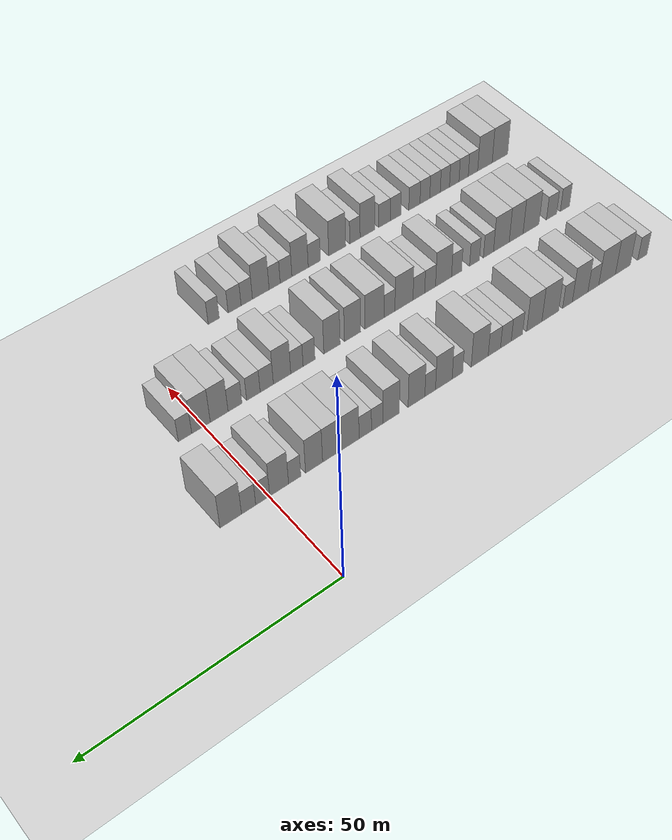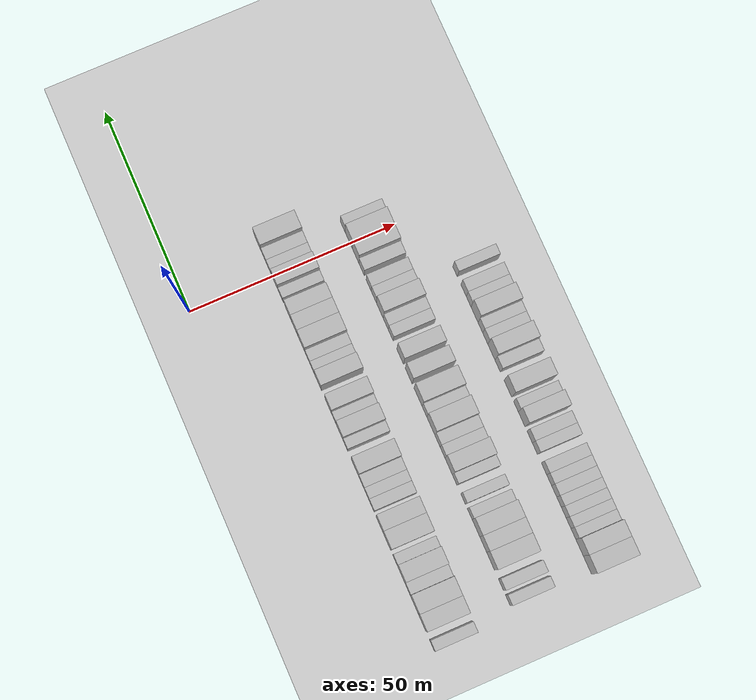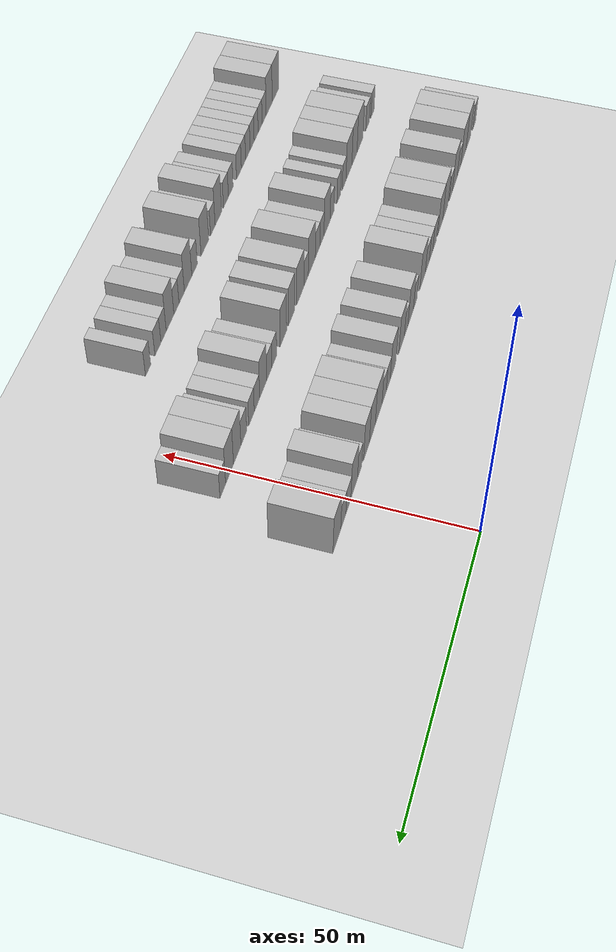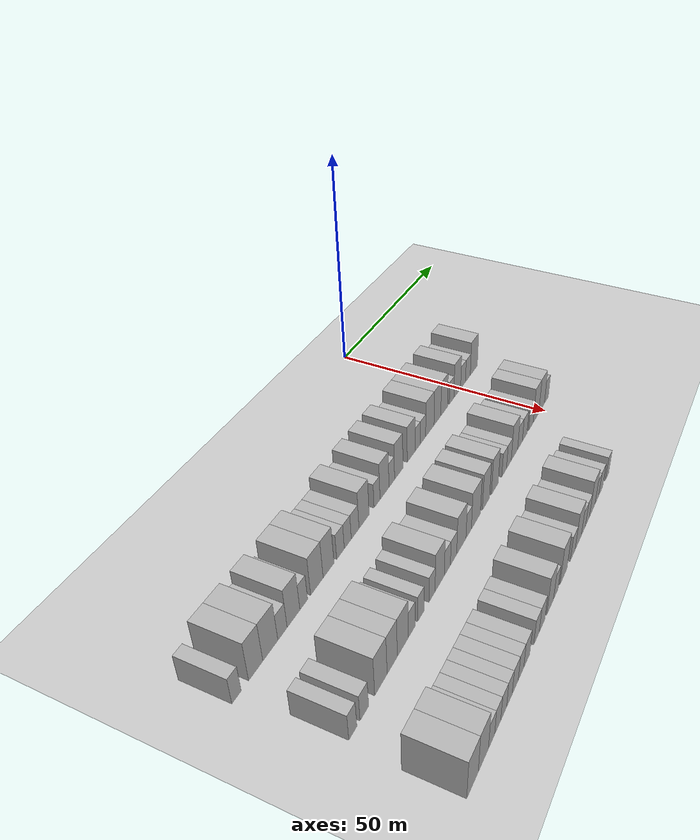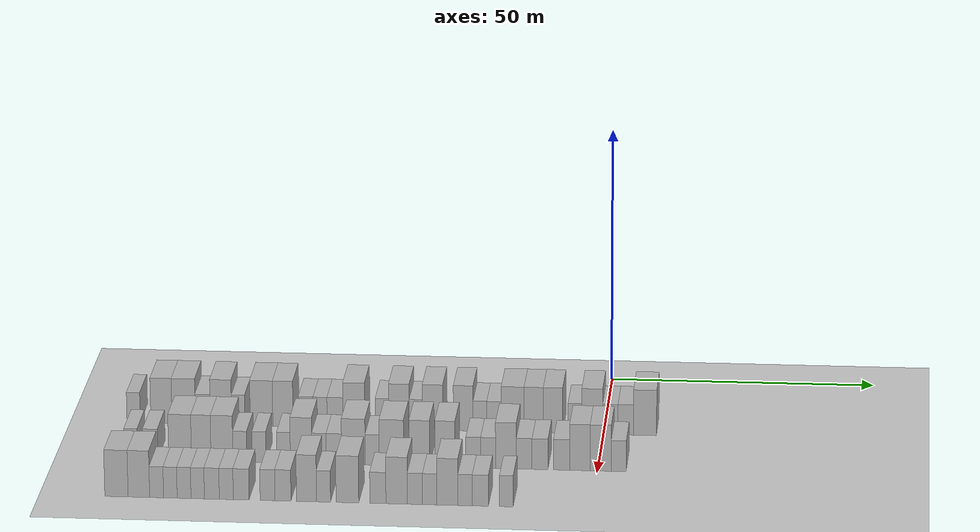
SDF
<sdf version="1.6">
 <world name="default">
  <include><name>ground_plane_1</name><uri>model://HANNAS_ground_plane</uri></include>
  <model name="building_59">
   <static>1</static>
   <pose>25.0000 -88.2660 0 0.000000 0.000000 0.000000</pose>
   <link name="link">
    <pose>0 0 3.00 0 0 0</pose>
    <collision name="collision"><geometry><box><size>10.0000 2.4998 6.0000</size></box></geometry></collision>
    <visual name="visual">
     <cast_shadows>0</cast_shadows>
     <geometry><box><size>10.0000 2.4998 6.0000</size></box></geometry>
     <material>
      <script>
       <uri>model://HANNAS_wall/materials/scripts</uri>
       <uri>model://HANNAS_wall/materials/textures</uri>
       <name>vrc/HANNAS_wall</name>
      </script>
     </material>
    </visual>
   </link>
  </model>
  <model name="building_60">
   <static>1</static>
   <pose>25.0000 -83.0185 0 0.000000 0.000000 0.000000</pose>
   <link name="link">
    <pose>0 0 4.50 0 0 0</pose>
    <collision name="collision"><geometry><box><size>10.0000 3.9951 9.0000</size></box></geometry></collision>
    <visual name="visual">
     <cast_shadows>0</cast_shadows>
     <geometry><box><size>10.0000 3.9951 9.0000</size></box></geometry>
     <material>
      <script>
       <uri>model://HANNAS_wall/materials/scripts</uri>
       <uri>model://HANNAS_wall/materials/textures</uri>
       <name>vrc/HANNAS_wall</name>
      </script>
     </material>
    </visual>
   </link>
  </model>
  <model name="building_61">
   <static>1</static>
   <pose>25.0000 -78.8180 0 0.000000 0.000000 0.000000</pose>
   <link name="link">
    <pose>0 0 4.50 0 0 0</pose>
    <collision name="collision"><geometry><box><size>10.0000 4.4060 9.0000</size></box></geometry></collision>
    <visual name="visual">
     <cast_shadows>0</cast_shadows>
     <geometry><box><size>10.0000 4.4060 9.0000</size></box></geometry>
     <material>
      <script>
       <uri>model://HANNAS_wall/materials/scripts</uri>
       <uri>model://HANNAS_wall/materials/textures</uri>
       <name>vrc/HANNAS_wall</name>
      </script>
     </material>
    </visual>
   </link>
  </model>
  <model name="building_62">
   <static>1</static>
   <pose>25.0000 -75.1995 0 0.000000 0.000000 0.000000</pose>
   <link name="link">
    <pose>0 0 3.00 0 0 0</pose>
    <collision name="collision"><geometry><box><size>10.0000 2.8310 6.0000</size></box></geometry></collision>
    <visual name="visual">
     <cast_shadows>0</cast_shadows>
     <geometry><box><size>10.0000 2.8310 6.0000</size></box></geometry>
     <material>
      <script>
       <uri>model://HANNAS_wall/materials/scripts</uri>
       <uri>model://HANNAS_wall/materials/textures</uri>
       <name>vrc/HANNAS_wall</name>
      </script>
     </material>
    </visual>
   </link>
  </model>
  <model name="building_63">
   <static>1</static>
   <pose>25.0000 -71.7658 0 0.000000 0.000000 0.000000</pose>
   <link name="link">
    <pose>0 0 4.50 0 0 0</pose>
    <collision name="collision"><geometry><box><size>10.0000 4.0365 9.0000</size></box></geometry></collision>
    <visual name="visual">
     <cast_shadows>0</cast_shadows>
     <geometry><box><size>10.0000 4.0365 9.0000</size></box></geometry>
     <material>
      <script>
       <uri>model://HANNAS_wall/materials/scripts</uri>
       <uri>model://HANNAS_wall/materials/textures</uri>
       <name>vrc/HANNAS_wall</name>
      </script>
     </material>
    </visual>
   </link>
  </model>
  <model name="building_64">
   <static>1</static>
   <pose>25.0000 -68.5009 0 0.000000 0.000000 0.000000</pose>
   <link name="link">
    <pose>0 0 3.00 0 0 0</pose>
    <collision name="collision"><geometry><box><size>10.0000 2.4933 6.0000</size></box></geometry></collision>
    <visual name="visual">
     <cast_shadows>0</cast_shadows>
     <geometry><box><size>10.0000 2.4933 6.0000</size></box></geometry>
     <material>
      <script>
       <uri>model://HANNAS_wall/materials/scripts</uri>
       <uri>model://HANNAS_wall/materials/textures</uri>
       <name>vrc/HANNAS_wall</name>
      </script>
     </material>
    </visual>
   </link>
  </model>
  <model name="building_65">
   <static>1</static>
   <pose>25.0000 -64.1254 0 0.000000 0.000000 0.000000</pose>
   <link name="link">
    <pose>0 0 4.50 0 0 0</pose>
    <collision name="collision"><geometry><box><size>10.0000 4.2577 9.0000</size></box></geometry></collision>
    <visual name="visual">
     <cast_shadows>0</cast_shadows>
     <geometry><box><size>10.0000 4.2577 9.0000</size></box></geometry>
     <material>
      <script>
       <uri>model://HANNAS_wall/materials/scripts</uri>
       <uri>model://HANNAS_wall/materials/textures</uri>
       <name>vrc/HANNAS_wall</name>
      </script>
     </material>
    </visual>
   </link>
  </model>
  <model name="building_66">
   <static>1</static>
   <pose>25.0000 -60.0883 0 0.000000 0.000000 0.000000</pose>
   <link name="link">
    <pose>0 0 4.50 0 0 0</pose>
    <collision name="collision"><geometry><box><size>10.0000 3.8163 9.0000</size></box></geometry></collision>
    <visual name="visual">
     <cast_shadows>0</cast_shadows>
     <geometry><box><size>10.0000 3.8163 9.0000</size></box></geometry>
     <material>
      <script>
       <uri>model://HANNAS_wall/materials/scripts</uri>
       <uri>model://HANNAS_wall/materials/textures</uri>
       <name>vrc/HANNAS_wall</name>
      </script>
     </material>
    </visual>
   </link>
  </model>
  <model name="building_67">
   <static>1</static>
   <pose>25.0000 -55.7863 0 0.000000 0.000000 0.000000</pose>
   <link name="link">
    <pose>0 0 3.00 0 0 0</pose>
    <collision name="collision"><geometry><box><size>10.0000 2.7878 6.0000</size></box></geometry></collision>
    <visual name="visual">
     <cast_shadows>0</cast_shadows>
     <geometry><box><size>10.0000 2.7878 6.0000</size></box></geometry>
     <material>
      <script>
       <uri>model://HANNAS_wall/materials/scripts</uri>
       <uri>model://HANNAS_wall/materials/textures</uri>
       <name>vrc/HANNAS_wall</name>
      </script>
     </material>
    </visual>
   </link>
  </model>
  <model name="building_68">
   <static>1</static>
   <pose>25.0000 -53.0809 0 0.000000 0.000000 0.000000</pose>
   <link name="link">
    <pose>0 0 3.00 0 0 0</pose>
    <collision name="collision"><geometry><box><size>10.0000 2.6230 6.0000</size></box></geometry></collision>
    <visual name="visual">
     <cast_shadows>0</cast_shadows>
     <geometry><box><size>10.0000 2.6230 6.0000</size></box></geometry>
     <material>
      <script>
       <uri>model://HANNAS_wall/materials/scripts</uri>
       <uri>model://HANNAS_wall/materials/textures</uri>
       <name>vrc/HANNAS_wall</name>
      </script>
     </material>
    </visual>
   </link>
  </model>
  <model name="building_69">
   <static>1</static>
   <pose>25.0000 -50.2747 0 0.000000 0.000000 0.000000</pose>
   <link name="link">
    <pose>0 0 3.00 0 0 0</pose>
    <collision name="collision"><geometry><box><size>10.0000 2.9894 6.0000</size></box></geometry></collision>
    <visual name="visual">
     <cast_shadows>0</cast_shadows>
     <geometry><box><size>10.0000 2.9894 6.0000</size></box></geometry>
     <material>
      <script>
       <uri>model://HANNAS_wall/materials/scripts</uri>
       <uri>model://HANNAS_wall/materials/textures</uri>
       <name>vrc/HANNAS_wall</name>
      </script>
     </material>
    </visual>
   </link>
  </model>
  <model name="building_70">
   <static>1</static>
   <pose>25.0000 -46.7468 0 0.000000 0.000000 0.000000</pose>
   <link name="link">
    <pose>0 0 4.50 0 0 0</pose>
    <collision name="collision"><geometry><box><size>10.0000 4.0664 9.0000</size></box></geometry></collision>
    <visual name="visual">
     <cast_shadows>0</cast_shadows>
     <geometry><box><size>10.0000 4.0664 9.0000</size></box></geometry>
     <material>
      <script>
       <uri>model://HANNAS_wall/materials/scripts</uri>
       <uri>model://HANNAS_wall/materials/textures</uri>
       <name>vrc/HANNAS_wall</name>
      </script>
     </material>
    </visual>
   </link>
  </model>
  <model name="building_71">
   <static>1</static>
   <pose>25.0000 -41.4574 0 0.000000 0.000000 0.000000</pose>
   <link name="link">
    <pose>0 0 3.00 0 0 0</pose>
    <collision name="collision"><geometry><box><size>10.0000 2.5124 6.0000</size></box></geometry></collision>
    <visual name="visual">
     <cast_shadows>0</cast_shadows>
     <geometry><box><size>10.0000 2.5124 6.0000</size></box></geometry>
     <material>
      <script>
       <uri>model://HANNAS_wall/materials/scripts</uri>
       <uri>model://HANNAS_wall/materials/textures</uri>
       <name>vrc/HANNAS_wall</name>
      </script>
     </material>
    </visual>
   </link>
  </model>
  <model name="building_72">
   <static>1</static>
   <pose>25.0000 -38.2625 0 0.000000 0.000000 0.000000</pose>
   <link name="link">
    <pose>0 0 4.50 0 0 0</pose>
    <collision name="collision"><geometry><box><size>10.0000 3.8774 9.0000</size></box></geometry></collision>
    <visual name="visual">
     <cast_shadows>0</cast_shadows>
     <geometry><box><size>10.0000 3.8774 9.0000</size></box></geometry>
     <material>
      <script>
       <uri>model://HANNAS_wall/materials/scripts</uri>
       <uri>model://HANNAS_wall/materials/textures</uri>
       <name>vrc/HANNAS_wall</name>
      </script>
     </material>
    </visual>
   </link>
  </model>
  <model name="building_73">
   <static>1</static>
   <pose>25.0000 -35.0971 0 0.000000 0.000000 0.000000</pose>
   <link name="link">
    <pose>0 0 3.00 0 0 0</pose>
    <collision name="collision"><geometry><box><size>10.0000 2.4535 6.0000</size></box></geometry></collision>
    <visual name="visual">
     <cast_shadows>0</cast_shadows>
     <geometry><box><size>10.0000 2.4535 6.0000</size></box></geometry>
     <material>
      <script>
       <uri>model://HANNAS_wall/materials/scripts</uri>
       <uri>model://HANNAS_wall/materials/textures</uri>
       <name>vrc/HANNAS_wall</name>
      </script>
     </material>
    </visual>
   </link>
  </model>
  <model name="building_74">
   <static>1</static>
   <pose>25.0000 -31.9582 0 0.000000 0.000000 0.000000</pose>
   <link name="link">
    <pose>0 0 4.50 0 0 0</pose>
    <collision name="collision"><geometry><box><size>10.0000 3.8245 9.0000</size></box></geometry></collision>
    <visual name="visual">
     <cast_shadows>0</cast_shadows>
     <geometry><box><size>10.0000 3.8245 9.0000</size></box></geometry>
     <material>
      <script>
       <uri>model://HANNAS_wall/materials/scripts</uri>
       <uri>model://HANNAS_wall/materials/textures</uri>
       <name>vrc/HANNAS_wall</name>
      </script>
     </material>
    </visual>
   </link>
  </model>
  <model name="building_75">
   <static>1</static>
   <pose>25.0000 -26.1996 0 0.000000 0.000000 0.000000</pose>
   <link name="link">
    <pose>0 0 4.50 0 0 0</pose>
    <collision name="collision"><geometry><box><size>10.0000 3.6927 9.0000</size></box></geometry></collision>
    <visual name="visual">
     <cast_shadows>0</cast_shadows>
     <geometry><box><size>10.0000 3.6927 9.0000</size></box></geometry>
     <material>
      <script>
       <uri>model://HANNAS_wall/materials/scripts</uri>
       <uri>model://HANNAS_wall/materials/textures</uri>
       <name>vrc/HANNAS_wall</name>
      </script>
     </material>
    </visual>
   </link>
  </model>
  <model name="building_76">
   <static>1</static>
   <pose>25.0000 -23.0851 0 0.000000 0.000000 0.000000</pose>
   <link name="link">
    <pose>0 0 3.00 0 0 0</pose>
    <collision name="collision"><geometry><box><size>10.0000 2.5362 6.0000</size></box></geometry></collision>
    <visual name="visual">
     <cast_shadows>0</cast_shadows>
     <geometry><box><size>10.0000 2.5362 6.0000</size></box></geometry>
     <material>
      <script>
       <uri>model://HANNAS_wall/materials/scripts</uri>
       <uri>model://HANNAS_wall/materials/textures</uri>
       <name>vrc/HANNAS_wall</name>
      </script>
     </material>
    </visual>
   </link>
  </model>
  <model name="building_77">
   <static>1</static>
   <pose>25.0000 -20.4574 0 0.000000 0.000000 0.000000</pose>
   <link name="link">
    <pose>0 0 3.00 0 0 0</pose>
    <collision name="collision"><geometry><box><size>10.0000 2.7192 6.0000</size></box></geometry></collision>
    <visual name="visual">
     <cast_shadows>0</cast_shadows>
     <geometry><box><size>10.0000 2.7192 6.0000</size></box></geometry>
     <material>
      <script>
       <uri>model://HANNAS_wall/materials/scripts</uri>
       <uri>model://HANNAS_wall/materials/textures</uri>
       <name>vrc/HANNAS_wall</name>
      </script>
     </material>
    </visual>
   </link>
  </model>
  <model name="building_78">
   <static>1</static>
   <pose>25.0000 -16.9598 0 0.000000 0.000000 0.000000</pose>
   <link name="link">
    <pose>0 0 4.50 0 0 0</pose>
    <collision name="collision"><geometry><box><size>10.0000 4.2761 9.0000</size></box></geometry></collision>
    <visual name="visual">
     <cast_shadows>0</cast_shadows>
     <geometry><box><size>10.0000 4.2761 9.0000</size></box></geometry>
     <material>
      <script>
       <uri>model://HANNAS_wall/materials/scripts</uri>
       <uri>model://HANNAS_wall/materials/textures</uri>
       <name>vrc/HANNAS_wall</name>
      </script>
     </material>
    </visual>
   </link>
  </model>
  <model name="building_79">
   <static>1</static>
   <pose>25.0000 -13.0199 0 0.000000 0.000000 0.000000</pose>
   <link name="link">
    <pose>0 0 4.50 0 0 0</pose>
    <collision name="collision"><geometry><box><size>10.0000 3.6037 9.0000</size></box></geometry></collision>
    <visual name="visual">
     <cast_shadows>0</cast_shadows>
     <geometry><box><size>10.0000 3.6037 9.0000</size></box></geometry>
     <material>
      <script>
       <uri>model://HANNAS_wall/materials/scripts</uri>
       <uri>model://HANNAS_wall/materials/textures</uri>
       <name>vrc/HANNAS_wall</name>
      </script>
     </material>
    </visual>
   </link>
  </model>
  <model name="building_80">
   <static>1</static>
   <pose>25.0000 -9.4075 0 0.000000 0.000000 0.000000</pose>
   <link name="link">
    <pose>0 0 4.50 0 0 0</pose>
    <collision name="collision"><geometry><box><size>10.0000 3.6210 9.0000</size></box></geometry></collision>
    <visual name="visual">
     <cast_shadows>0</cast_shadows>
     <geometry><box><size>10.0000 3.6210 9.0000</size></box></geometry>
     <material>
      <script>
       <uri>model://HANNAS_wall/materials/scripts</uri>
       <uri>model://HANNAS_wall/materials/textures</uri>
       <name>vrc/HANNAS_wall</name>
      </script>
     </material>
    </visual>
   </link>
  </model>
  <model name="building_81">
   <static>1</static>
   <pose>25.0000 -5.3131 0 0.000000 0.000000 0.000000</pose>
   <link name="link">
    <pose>0 0 3.00 0 0 0</pose>
    <collision name="collision"><geometry><box><size>10.0000 2.5679 6.0000</size></box></geometry></collision>
    <visual name="visual">
     <cast_shadows>0</cast_shadows>
     <geometry><box><size>10.0000 2.5679 6.0000</size></box></geometry>
     <material>
      <script>
       <uri>model://HANNAS_wall/materials/scripts</uri>
       <uri>model://HANNAS_wall/materials/textures</uri>
       <name>vrc/HANNAS_wall</name>
      </script>
     </material>
    </visual>
   </link>
  </model>
  <model name="building_82">
   <static>1</static>
   <pose>25.0000 -2.0773 0 0.000000 0.000000 0.000000</pose>
   <link name="link">
    <pose>0 0 4.50 0 0 0</pose>
    <collision name="collision"><geometry><box><size>10.0000 3.9038 9.0000</size></box></geometry></collision>
    <visual name="visual">
     <cast_shadows>0</cast_shadows>
     <geometry><box><size>10.0000 3.9038 9.0000</size></box></geometry>
     <material>
      <script>
       <uri>model://HANNAS_wall/materials/scripts</uri>
       <uri>model://HANNAS_wall/materials/textures</uri>
       <name>vrc/HANNAS_wall</name>
      </script>
     </material>
    </visual>
   </link>
  </model>
  <model name="building_83">
   <static>1</static>
   <pose>25.0000 1.3079 0 0.000000 0.000000 0.000000</pose>
   <link name="link">
    <pose>0 0 3.00 0 0 0</pose>
    <collision name="collision"><geometry><box><size>10.0000 2.8666 6.0000</size></box></geometry></collision>
    <visual name="visual">
     <cast_shadows>0</cast_shadows>
     <geometry><box><size>10.0000 2.8666 6.0000</size></box></geometry>
     <material>
      <script>
       <uri>model://HANNAS_wall/materials/scripts</uri>
       <uri>model://HANNAS_wall/materials/textures</uri>
       <name>vrc/HANNAS_wall</name>
      </script>
     </material>
    </visual>
   </link>
  </model>
  <model name="building_84">
   <static>1</static>
   <pose>25.0000 4.1824 0 0.000000 0.000000 0.000000</pose>
   <link name="link">
    <pose>0 0 3.00 0 0 0</pose>
    <collision name="collision"><geometry><box><size>10.0000 2.8824 6.0000</size></box></geometry></collision>
    <visual name="visual">
     <cast_shadows>0</cast_shadows>
     <geometry><box><size>10.0000 2.8824 6.0000</size></box></geometry>
     <material>
      <script>
       <uri>model://HANNAS_wall/materials/scripts</uri>
       <uri>model://HANNAS_wall/materials/textures</uri>
       <name>vrc/HANNAS_wall</name>
      </script>
     </material>
    </visual>
   </link>
  </model>
  <model name="building_85">
   <static>1</static>
   <pose>25.0000 7.7852 0 0.000000 0.000000 0.000000</pose>
   <link name="link">
    <pose>0 0 4.50 0 0 0</pose>
    <collision name="collision"><geometry><box><size>10.0000 4.3231 9.0000</size></box></geometry></collision>
    <visual name="visual">
     <cast_shadows>0</cast_shadows>
     <geometry><box><size>10.0000 4.3231 9.0000</size></box></geometry>
     <material>
      <script>
       <uri>model://HANNAS_wall/materials/scripts</uri>
       <uri>model://HANNAS_wall/materials/textures</uri>
       <name>vrc/HANNAS_wall</name>
      </script>
     </material>
    </visual>
   </link>
  </model>
  <model name="building_245">
   <static>1</static>
   <pose>44.0000 -86.0843 0 0.000000 0.000000 0.000000</pose>
   <link name="link">
    <pose>0 0 3.00 0 0 0</pose>
    <collision name="collision"><geometry><box><size>10.0000 2.4808 6.0000</size></box></geometry></collision>
    <visual name="visual">
     <cast_shadows>0</cast_shadows>
     <geometry><box><size>10.0000 2.4808 6.0000</size></box></geometry>
     <material>
      <script>
       <uri>model://HANNAS_wall/materials/scripts</uri>
       <uri>model://HANNAS_wall/materials/textures</uri>
       <name>vrc/HANNAS_wall</name>
      </script>
     </material>
    </visual>
   </link>
  </model>
  <model name="building_246">
   <static>1</static>
   <pose>44.0000 -82.4727 0 0.000000 0.000000 0.000000</pose>
   <link name="link">
    <pose>0 0 3.00 0 0 0</pose>
    <collision name="collision"><geometry><box><size>10.0000 2.7424 6.0000</size></box></geometry></collision>
    <visual name="visual">
     <cast_shadows>0</cast_shadows>
     <geometry><box><size>10.0000 2.7424 6.0000</size></box></geometry>
     <material>
      <script>
       <uri>model://HANNAS_wall/materials/scripts</uri>
       <uri>model://HANNAS_wall/materials/textures</uri>
       <name>vrc/HANNAS_wall</name>
      </script>
     </material>
    </visual>
   </link>
  </model>
  <model name="building_247">
   <static>1</static>
   <pose>44.0000 -76.9867 0 0.000000 0.000000 0.000000</pose>
   <link name="link">
    <pose>0 0 4.50 0 0 0</pose>
    <collision name="collision"><geometry><box><size>10.0000 4.2298 9.0000</size></box></geometry></collision>
    <visual name="visual">
     <cast_shadows>0</cast_shadows>
     <geometry><box><size>10.0000 4.2298 9.0000</size></box></geometry>
     <material>
      <script>
       <uri>model://HANNAS_wall/materials/scripts</uri>
       <uri>model://HANNAS_wall/materials/textures</uri>
       <name>vrc/HANNAS_wall</name>
      </script>
     </material>
    </visual>
   </link>
  </model>
  <model name="building_248">
   <static>1</static>
   <pose>44.0000 -73.0614 0 0.000000 0.000000 0.000000</pose>
   <link name="link">
    <pose>0 0 4.50 0 0 0</pose>
    <collision name="collision"><geometry><box><size>10.0000 3.6208 9.0000</size></box></geometry></collision>
    <visual name="visual">
     <cast_shadows>0</cast_shadows>
     <geometry><box><size>10.0000 3.6208 9.0000</size></box></geometry>
     <material>
      <script>
       <uri>model://HANNAS_wall/materials/scripts</uri>
       <uri>model://HANNAS_wall/materials/textures</uri>
       <name>vrc/HANNAS_wall</name>
      </script>
     </material>
    </visual>
   </link>
  </model>
  <model name="building_249">
   <static>1</static>
   <pose>44.0000 -69.2176 0 0.000000 0.000000 0.000000</pose>
   <link name="link">
    <pose>0 0 4.50 0 0 0</pose>
    <collision name="collision"><geometry><box><size>10.0000 4.0668 9.0000</size></box></geometry></collision>
    <visual name="visual">
     <cast_shadows>0</cast_shadows>
     <geometry><box><size>10.0000 4.0668 9.0000</size></box></geometry>
     <material>
      <script>
       <uri>model://HANNAS_wall/materials/scripts</uri>
       <uri>model://HANNAS_wall/materials/textures</uri>
       <name>vrc/HANNAS_wall</name>
      </script>
     </material>
    </visual>
   </link>
  </model>
  <model name="building_250">
   <static>1</static>
   <pose>44.0000 -65.8852 0 0.000000 0.000000 0.000000</pose>
   <link name="link">
    <pose>0 0 3.00 0 0 0</pose>
    <collision name="collision"><geometry><box><size>10.0000 2.5979 6.0000</size></box></geometry></collision>
    <visual name="visual">
     <cast_shadows>0</cast_shadows>
     <geometry><box><size>10.0000 2.5979 6.0000</size></box></geometry>
     <material>
      <script>
       <uri>model://HANNAS_wall/materials/scripts</uri>
       <uri>model://HANNAS_wall/materials/textures</uri>
       <name>vrc/HANNAS_wall</name>
      </script>
     </material>
    </visual>
   </link>
  </model>
  <model name="building_251">
   <static>1</static>
   <pose>44.0000 -62.3302 0 0.000000 0.000000 0.000000</pose>
   <link name="link">
    <pose>0 0 3.00 0 0 0</pose>
    <collision name="collision"><geometry><box><size>10.0000 2.5119 6.0000</size></box></geometry></collision>
    <visual name="visual">
     <cast_shadows>0</cast_shadows>
     <geometry><box><size>10.0000 2.5119 6.0000</size></box></geometry>
     <material>
      <script>
       <uri>model://HANNAS_wall/materials/scripts</uri>
       <uri>model://HANNAS_wall/materials/textures</uri>
       <name>vrc/HANNAS_wall</name>
      </script>
     </material>
    </visual>
   </link>
  </model>
  <model name="building_252">
   <static>1</static>
   <pose>44.0000 -57.8119 0 0.000000 0.000000 0.000000</pose>
   <link name="link">
    <pose>0 0 3.00 0 0 0</pose>
    <collision name="collision"><geometry><box><size>10.0000 2.5248 6.0000</size></box></geometry></collision>
    <visual name="visual">
     <cast_shadows>0</cast_shadows>
     <geometry><box><size>10.0000 2.5248 6.0000</size></box></geometry>
     <material>
      <script>
       <uri>model://HANNAS_wall/materials/scripts</uri>
       <uri>model://HANNAS_wall/materials/textures</uri>
       <name>vrc/HANNAS_wall</name>
      </script>
     </material>
    </visual>
   </link>
  </model>
  <model name="building_253">
   <static>1</static>
   <pose>44.0000 -54.5671 0 0.000000 0.000000 0.000000</pose>
   <link name="link">
    <pose>0 0 4.50 0 0 0</pose>
    <collision name="collision"><geometry><box><size>10.0000 3.9647 9.0000</size></box></geometry></collision>
    <visual name="visual">
     <cast_shadows>0</cast_shadows>
     <geometry><box><size>10.0000 3.9647 9.0000</size></box></geometry>
     <material>
      <script>
       <uri>model://HANNAS_wall/materials/scripts</uri>
       <uri>model://HANNAS_wall/materials/textures</uri>
       <name>vrc/HANNAS_wall</name>
      </script>
     </material>
    </visual>
   </link>
  </model>
  <model name="building_254">
   <static>1</static>
   <pose>44.0000 -51.2525 0 0.000000 0.000000 0.000000</pose>
   <link name="link">
    <pose>0 0 3.00 0 0 0</pose>
    <collision name="collision"><geometry><box><size>10.0000 2.6645 6.0000</size></box></geometry></collision>
    <visual name="visual">
     <cast_shadows>0</cast_shadows>
     <geometry><box><size>10.0000 2.6645 6.0000</size></box></geometry>
     <material>
      <script>
       <uri>model://HANNAS_wall/materials/scripts</uri>
       <uri>model://HANNAS_wall/materials/textures</uri>
       <name>vrc/HANNAS_wall</name>
      </script>
     </material>
    </visual>
   </link>
  </model>
  <model name="building_255">
   <static>1</static>
   <pose>44.0000 -48.4987 0 0.000000 0.000000 0.000000</pose>
   <link name="link">
    <pose>0 0 3.00 0 0 0</pose>
    <collision name="collision"><geometry><box><size>10.0000 2.8431 6.0000</size></box></geometry></collision>
    <visual name="visual">
     <cast_shadows>0</cast_shadows>
     <geometry><box><size>10.0000 2.8431 6.0000</size></box></geometry>
     <material>
      <script>
       <uri>model://HANNAS_wall/materials/scripts</uri>
       <uri>model://HANNAS_wall/materials/textures</uri>
       <name>vrc/HANNAS_wall</name>
      </script>
     </material>
    </visual>
   </link>
  </model>
  <model name="building_256">
   <static>1</static>
   <pose>44.0000 -44.9045 0 0.000000 0.000000 0.000000</pose>
   <link name="link">
    <pose>0 0 4.50 0 0 0</pose>
    <collision name="collision"><geometry><box><size>10.0000 4.3453 9.0000</size></box></geometry></collision>
    <visual name="visual">
     <cast_shadows>0</cast_shadows>
     <geometry><box><size>10.0000 4.3453 9.0000</size></box></geometry>
     <material>
      <script>
       <uri>model://HANNAS_wall/materials/scripts</uri>
       <uri>model://HANNAS_wall/materials/textures</uri>
       <name>vrc/HANNAS_wall</name>
      </script>
     </material>
    </visual>
   </link>
  </model>
  <model name="building_257">
   <static>1</static>
   <pose>44.0000 -41.4314 0 0.000000 0.000000 0.000000</pose>
   <link name="link">
    <pose>0 0 3.00 0 0 0</pose>
    <collision name="collision"><geometry><box><size>10.0000 2.6010 6.0000</size></box></geometry></collision>
    <visual name="visual">
     <cast_shadows>0</cast_shadows>
     <geometry><box><size>10.0000 2.6010 6.0000</size></box></geometry>
     <material>
      <script>
       <uri>model://HANNAS_wall/materials/scripts</uri>
       <uri>model://HANNAS_wall/materials/textures</uri>
       <name>vrc/HANNAS_wall</name>
      </script>
     </material>
    </visual>
   </link>
  </model>
  <model name="building_258">
   <static>1</static>
   <pose>44.0000 -37.8841 0 0.000000 0.000000 0.000000</pose>
   <link name="link">
    <pose>0 0 4.50 0 0 0</pose>
    <collision name="collision"><geometry><box><size>10.0000 4.4934 9.0000</size></box></geometry></collision>
    <visual name="visual">
     <cast_shadows>0</cast_shadows>
     <geometry><box><size>10.0000 4.4934 9.0000</size></box></geometry>
     <material>
      <script>
       <uri>model://HANNAS_wall/materials/scripts</uri>
       <uri>model://HANNAS_wall/materials/textures</uri>
       <name>vrc/HANNAS_wall</name>
      </script>
     </material>
    </visual>
   </link>
  </model>
  <model name="building_259">
   <static>1</static>
   <pose>44.0000 -32.7535 0 0.000000 0.000000 0.000000</pose>
   <link name="link">
    <pose>0 0 4.50 0 0 0</pose>
    <collision name="collision"><geometry><box><size>10.0000 3.7679 9.0000</size></box></geometry></collision>
    <visual name="visual">
     <cast_shadows>0</cast_shadows>
     <geometry><box><size>10.0000 3.7679 9.0000</size></box></geometry>
     <material>
      <script>
       <uri>model://HANNAS_wall/materials/scripts</uri>
       <uri>model://HANNAS_wall/materials/textures</uri>
       <name>vrc/HANNAS_wall</name>
      </script>
     </material>
    </visual>
   </link>
  </model>
  <model name="building_260">
   <static>1</static>
   <pose>44.0000 -28.0160 0 0.000000 0.000000 0.000000</pose>
   <link name="link">
    <pose>0 0 4.50 0 0 0</pose>
    <collision name="collision"><geometry><box><size>10.0000 3.7071 9.0000</size></box></geometry></collision>
    <visual name="visual">
     <cast_shadows>0</cast_shadows>
     <geometry><box><size>10.0000 3.7071 9.0000</size></box></geometry>
     <material>
      <script>
       <uri>model://HANNAS_wall/materials/scripts</uri>
       <uri>model://HANNAS_wall/materials/textures</uri>
       <name>vrc/HANNAS_wall</name>
      </script>
     </material>
    </visual>
   </link>
  </model>
  <model name="building_261">
   <static>1</static>
   <pose>44.0000 -22.8151 0 0.000000 0.000000 0.000000</pose>
   <link name="link">
    <pose>0 0 3.00 0 0 0</pose>
    <collision name="collision"><geometry><box><size>10.0000 2.6948 6.0000</size></box></geometry></collision>
    <visual name="visual">
     <cast_shadows>0</cast_shadows>
     <geometry><box><size>10.0000 2.6948 6.0000</size></box></geometry>
     <material>
      <script>
       <uri>model://HANNAS_wall/materials/scripts</uri>
       <uri>model://HANNAS_wall/materials/textures</uri>
       <name>vrc/HANNAS_wall</name>
      </script>
     </material>
    </visual>
   </link>
  </model>
  <model name="building_262">
   <static>1</static>
   <pose>44.0000 -20.0927 0 0.000000 0.000000 0.000000</pose>
   <link name="link">
    <pose>0 0 3.00 0 0 0</pose>
    <collision name="collision"><geometry><box><size>10.0000 2.7499 6.0000</size></box></geometry></collision>
    <visual name="visual">
     <cast_shadows>0</cast_shadows>
     <geometry><box><size>10.0000 2.7499 6.0000</size></box></geometry>
     <material>
      <script>
       <uri>model://HANNAS_wall/materials/scripts</uri>
       <uri>model://HANNAS_wall/materials/textures</uri>
       <name>vrc/HANNAS_wall</name>
      </script>
     </material>
    </visual>
   </link>
  </model>
  <model name="building_263">
   <static>1</static>
   <pose>44.0000 -16.7990 0 0.000000 0.000000 0.000000</pose>
   <link name="link">
    <pose>0 0 4.50 0 0 0</pose>
    <collision name="collision"><geometry><box><size>10.0000 3.8375 9.0000</size></box></geometry></collision>
    <visual name="visual">
     <cast_shadows>0</cast_shadows>
     <geometry><box><size>10.0000 3.8375 9.0000</size></box></geometry>
     <material>
      <script>
       <uri>model://HANNAS_wall/materials/scripts</uri>
       <uri>model://HANNAS_wall/materials/textures</uri>
       <name>vrc/HANNAS_wall</name>
      </script>
     </material>
    </visual>
   </link>
  </model>
  <model name="building_264">
   <static>1</static>
   <pose>44.0000 -13.4365 0 0.000000 0.000000 0.000000</pose>
   <link name="link">
    <pose>0 0 3.00 0 0 0</pose>
    <collision name="collision"><geometry><box><size>10.0000 2.8874 6.0000</size></box></geometry></collision>
    <visual name="visual">
     <cast_shadows>0</cast_shadows>
     <geometry><box><size>10.0000 2.8874 6.0000</size></box></geometry>
     <material>
      <script>
       <uri>model://HANNAS_wall/materials/scripts</uri>
       <uri>model://HANNAS_wall/materials/textures</uri>
       <name>vrc/HANNAS_wall</name>
      </script>
     </material>
    </visual>
   </link>
  </model>
  <model name="building_265">
   <static>1</static>
   <pose>44.0000 -10.5297 0 0.000000 0.000000 0.000000</pose>
   <link name="link">
    <pose>0 0 3.00 0 0 0</pose>
    <collision name="collision"><geometry><box><size>10.0000 2.9261 6.0000</size></box></geometry></collision>
    <visual name="visual">
     <cast_shadows>0</cast_shadows>
     <geometry><box><size>10.0000 2.9261 6.0000</size></box></geometry>
     <material>
      <script>
       <uri>model://HANNAS_wall/materials/scripts</uri>
       <uri>model://HANNAS_wall/materials/textures</uri>
       <name>vrc/HANNAS_wall</name>
      </script>
     </material>
    </visual>
   </link>
  </model>
  <model name="building_266">
   <static>1</static>
   <pose>44.0000 -6.5814 0 0.000000 0.000000 0.000000</pose>
   <link name="link">
    <pose>0 0 3.00 0 0 0</pose>
    <collision name="collision"><geometry><box><size>10.0000 2.9705 6.0000</size></box></geometry></collision>
    <visual name="visual">
     <cast_shadows>0</cast_shadows>
     <geometry><box><size>10.0000 2.9705 6.0000</size></box></geometry>
     <material>
      <script>
       <uri>model://HANNAS_wall/materials/scripts</uri>
       <uri>model://HANNAS_wall/materials/textures</uri>
       <name>vrc/HANNAS_wall</name>
      </script>
     </material>
    </visual>
   </link>
  </model>
  <model name="building_267">
   <static>1</static>
   <pose>44.0000 -3.2239 0 0.000000 0.000000 0.000000</pose>
   <link name="link">
    <pose>0 0 4.50 0 0 0</pose>
    <collision name="collision"><geometry><box><size>10.0000 3.7447 9.0000</size></box></geometry></collision>
    <visual name="visual">
     <cast_shadows>0</cast_shadows>
     <geometry><box><size>10.0000 3.7447 9.0000</size></box></geometry>
     <material>
      <script>
       <uri>model://HANNAS_wall/materials/scripts</uri>
       <uri>model://HANNAS_wall/materials/textures</uri>
       <name>vrc/HANNAS_wall</name>
      </script>
     </material>
    </visual>
   </link>
  </model>
  <model name="building_268">
   <static>1</static>
   <pose>44.0000 0.5912 0 0.000000 0.000000 0.000000</pose>
   <link name="link">
    <pose>0 0 4.50 0 0 0</pose>
    <collision name="collision"><geometry><box><size>10.0000 3.8855 9.0000</size></box></geometry></collision>
    <visual name="visual">
     <cast_shadows>0</cast_shadows>
     <geometry><box><size>10.0000 3.8855 9.0000</size></box></geometry>
     <material>
      <script>
       <uri>model://HANNAS_wall/materials/scripts</uri>
       <uri>model://HANNAS_wall/materials/textures</uri>
       <name>vrc/HANNAS_wall</name>
      </script>
     </material>
    </visual>
   </link>
  </model>
  <model name="building_269">
   <static>1</static>
   <pose>44.0000 3.9182 0 0.000000 0.000000 0.000000</pose>
   <link name="link">
    <pose>0 0 3.00 0 0 0</pose>
    <collision name="collision"><geometry><box><size>10.0000 2.7685 6.0000</size></box></geometry></collision>
    <visual name="visual">
     <cast_shadows>0</cast_shadows>
     <geometry><box><size>10.0000 2.7685 6.0000</size></box></geometry>
     <material>
      <script>
       <uri>model://HANNAS_wall/materials/scripts</uri>
       <uri>model://HANNAS_wall/materials/textures</uri>
       <name>vrc/HANNAS_wall</name>
      </script>
     </material>
    </visual>
   </link>
  </model>
  <model name="building_405">
   <static>1</static>
   <pose>63.0000 -86.0707 0 0.000000 0.000000 0.000000</pose>
   <link name="link">
    <pose>0 0 4.50 0 0 0</pose>
    <collision name="collision"><geometry><box><size>10.0000 4.2426 9.0000</size></box></geometry></collision>
    <visual name="visual">
     <cast_shadows>0</cast_shadows>
     <geometry><box><size>10.0000 4.2426 9.0000</size></box></geometry>
     <material>
      <script>
       <uri>model://HANNAS_wall/materials/scripts</uri>
       <uri>model://HANNAS_wall/materials/textures</uri>
       <name>vrc/HANNAS_wall</name>
      </script>
     </material>
    </visual>
   </link>
  </model>
  <model name="building_406">
   <static>1</static>
   <pose>63.0000 -81.9878 0 0.000000 0.000000 0.000000</pose>
   <link name="link">
    <pose>0 0 4.50 0 0 0</pose>
    <collision name="collision"><geometry><box><size>10.0000 3.9231 9.0000</size></box></geometry></collision>
    <visual name="visual">
     <cast_shadows>0</cast_shadows>
     <geometry><box><size>10.0000 3.9231 9.0000</size></box></geometry>
     <material>
      <script>
       <uri>model://HANNAS_wall/materials/scripts</uri>
       <uri>model://HANNAS_wall/materials/textures</uri>
       <name>vrc/HANNAS_wall</name>
      </script>
     </material>
    </visual>
   </link>
  </model>
  <model name="building_407">
   <static>1</static>
   <pose>63.0000 -78.7579 0 0.000000 0.000000 0.000000</pose>
   <link name="link">
    <pose>0 0 3.00 0 0 0</pose>
    <collision name="collision"><geometry><box><size>10.0000 2.5367 6.0000</size></box></geometry></collision>
    <visual name="visual">
     <cast_shadows>0</cast_shadows>
     <geometry><box><size>10.0000 2.5367 6.0000</size></box></geometry>
     <material>
      <script>
       <uri>model://HANNAS_wall/materials/scripts</uri>
       <uri>model://HANNAS_wall/materials/textures</uri>
       <name>vrc/HANNAS_wall</name>
      </script>
     </material>
    </visual>
   </link>
  </model>
  <model name="building_408">
   <static>1</static>
   <pose>63.0000 -76.2513 0 0.000000 0.000000 0.000000</pose>
   <link name="link">
    <pose>0 0 3.00 0 0 0</pose>
    <collision name="collision"><geometry><box><size>10.0000 2.4766 6.0000</size></box></geometry></collision>
    <visual name="visual">
     <cast_shadows>0</cast_shadows>
     <geometry><box><size>10.0000 2.4766 6.0000</size></box></geometry>
     <material>
      <script>
       <uri>model://HANNAS_wall/materials/scripts</uri>
       <uri>model://HANNAS_wall/materials/textures</uri>
       <name>vrc/HANNAS_wall</name>
      </script>
     </material>
    </visual>
   </link>
  </model>
  <model name="building_409">
   <static>1</static>
   <pose>63.0000 -73.7528 0 0.000000 0.000000 0.000000</pose>
   <link name="link">
    <pose>0 0 3.00 0 0 0</pose>
    <collision name="collision"><geometry><box><size>10.0000 2.5205 6.0000</size></box></geometry></collision>
    <visual name="visual">
     <cast_shadows>0</cast_shadows>
     <geometry><box><size>10.0000 2.5205 6.0000</size></box></geometry>
     <material>
      <script>
       <uri>model://HANNAS_wall/materials/scripts</uri>
       <uri>model://HANNAS_wall/materials/textures</uri>
       <name>vrc/HANNAS_wall</name>
      </script>
     </material>
    </visual>
   </link>
  </model>
  <model name="building_410">
   <static>1</static>
   <pose>63.0000 -71.2757 0 0.000000 0.000000 0.000000</pose>
   <link name="link">
    <pose>0 0 3.00 0 0 0</pose>
    <collision name="collision"><geometry><box><size>10.0000 2.4337 6.0000</size></box></geometry></collision>
    <visual name="visual">
     <cast_shadows>0</cast_shadows>
     <geometry><box><size>10.0000 2.4337 6.0000</size></box></geometry>
     <material>
      <script>
       <uri>model://HANNAS_wall/materials/scripts</uri>
       <uri>model://HANNAS_wall/materials/textures</uri>
       <name>vrc/HANNAS_wall</name>
      </script>
     </material>
    </visual>
   </link>
  </model>
  <model name="building_411">
   <static>1</static>
   <pose>63.0000 -68.6984 0 0.000000 0.000000 0.000000</pose>
   <link name="link">
    <pose>0 0 3.00 0 0 0</pose>
    <collision name="collision"><geometry><box><size>10.0000 2.7208 6.0000</size></box></geometry></collision>
    <visual name="visual">
     <cast_shadows>0</cast_shadows>
     <geometry><box><size>10.0000 2.7208 6.0000</size></box></geometry>
     <material>
      <script>
       <uri>model://HANNAS_wall/materials/scripts</uri>
       <uri>model://HANNAS_wall/materials/textures</uri>
       <name>vrc/HANNAS_wall</name>
      </script>
     </material>
    </visual>
   </link>
  </model>
  <model name="building_412">
   <static>1</static>
   <pose>63.0000 -66.0656 0 0.000000 0.000000 0.000000</pose>
   <link name="link">
    <pose>0 0 3.00 0 0 0</pose>
    <collision name="collision"><geometry><box><size>10.0000 2.5450 6.0000</size></box></geometry></collision>
    <visual name="visual">
     <cast_shadows>0</cast_shadows>
     <geometry><box><size>10.0000 2.5450 6.0000</size></box></geometry>
     <material>
      <script>
       <uri>model://HANNAS_wall/materials/scripts</uri>
       <uri>model://HANNAS_wall/materials/textures</uri>
       <name>vrc/HANNAS_wall</name>
      </script>
     </material>
    </visual>
   </link>
  </model>
  <model name="building_413">
   <static>1</static>
   <pose>63.0000 -63.3538 0 0.000000 0.000000 0.000000</pose>
   <link name="link">
    <pose>0 0 3.00 0 0 0</pose>
    <collision name="collision"><geometry><box><size>10.0000 2.8786 6.0000</size></box></geometry></collision>
    <visual name="visual">
     <cast_shadows>0</cast_shadows>
     <geometry><box><size>10.0000 2.8786 6.0000</size></box></geometry>
     <material>
      <script>
       <uri>model://HANNAS_wall/materials/scripts</uri>
       <uri>model://HANNAS_wall/materials/textures</uri>
       <name>vrc/HANNAS_wall</name>
      </script>
     </material>
    </visual>
   </link>
  </model>
  <model name="building_414">
   <static>1</static>
   <pose>63.0000 -58.5616 0 0.000000 0.000000 0.000000</pose>
   <link name="link">
    <pose>0 0 3.00 0 0 0</pose>
    <collision name="collision"><geometry><box><size>10.0000 2.7057 6.0000</size></box></geometry></collision>
    <visual name="visual">
     <cast_shadows>0</cast_shadows>
     <geometry><box><size>10.0000 2.7057 6.0000</size></box></geometry>
     <material>
      <script>
       <uri>model://HANNAS_wall/materials/scripts</uri>
       <uri>model://HANNAS_wall/materials/textures</uri>
       <name>vrc/HANNAS_wall</name>
      </script>
     </material>
    </visual>
   </link>
  </model>
  <model name="building_415">
   <static>1</static>
   <pose>63.0000 -55.7594 0 0.000000 0.000000 0.000000</pose>
   <link name="link">
    <pose>0 0 3.00 0 0 0</pose>
    <collision name="collision"><geometry><box><size>10.0000 2.8986 6.0000</size></box></geometry></collision>
    <visual name="visual">
     <cast_shadows>0</cast_shadows>
     <geometry><box><size>10.0000 2.8986 6.0000</size></box></geometry>
     <material>
      <script>
       <uri>model://HANNAS_wall/materials/scripts</uri>
       <uri>model://HANNAS_wall/materials/textures</uri>
       <name>vrc/HANNAS_wall</name>
      </script>
     </material>
    </visual>
   </link>
  </model>
  <model name="building_416">
   <static>1</static>
   <pose>63.0000 -51.4938 0 0.000000 0.000000 0.000000</pose>
   <link name="link">
    <pose>0 0 4.50 0 0 0</pose>
    <collision name="collision"><geometry><box><size>10.0000 3.6326 9.0000</size></box></geometry></collision>
    <visual name="visual">
     <cast_shadows>0</cast_shadows>
     <geometry><box><size>10.0000 3.6326 9.0000</size></box></geometry>
     <material>
      <script>
       <uri>model://HANNAS_wall/materials/scripts</uri>
       <uri>model://HANNAS_wall/materials/textures</uri>
       <name>vrc/HANNAS_wall</name>
      </script>
     </material>
    </visual>
   </link>
  </model>
  <model name="building_417">
   <static>1</static>
   <pose>63.0000 -48.4017 0 0.000000 0.000000 0.000000</pose>
   <link name="link">
    <pose>0 0 3.00 0 0 0</pose>
    <collision name="collision"><geometry><box><size>10.0000 2.5516 6.0000</size></box></geometry></collision>
    <visual name="visual">
     <cast_shadows>0</cast_shadows>
     <geometry><box><size>10.0000 2.5516 6.0000</size></box></geometry>
     <material>
      <script>
       <uri>model://HANNAS_wall/materials/scripts</uri>
       <uri>model://HANNAS_wall/materials/textures</uri>
       <name>vrc/HANNAS_wall</name>
      </script>
     </material>
    </visual>
   </link>
  </model>
  <model name="building_418">
   <static>1</static>
   <pose>63.0000 -44.0660 0 0.000000 0.000000 0.000000</pose>
   <link name="link">
    <pose>0 0 4.50 0 0 0</pose>
    <collision name="collision"><geometry><box><size>10.0000 4.1199 9.0000</size></box></geometry></collision>
    <visual name="visual">
     <cast_shadows>0</cast_shadows>
     <geometry><box><size>10.0000 4.1199 9.0000</size></box></geometry>
     <material>
      <script>
       <uri>model://HANNAS_wall/materials/scripts</uri>
       <uri>model://HANNAS_wall/materials/textures</uri>
       <name>vrc/HANNAS_wall</name>
      </script>
     </material>
    </visual>
   </link>
  </model>
  <model name="building_419">
   <static>1</static>
   <pose>63.0000 -38.5469 0 0.000000 0.000000 0.000000</pose>
   <link name="link">
    <pose>0 0 3.00 0 0 0</pose>
    <collision name="collision"><geometry><box><size>10.0000 2.9183 6.0000</size></box></geometry></collision>
    <visual name="visual">
     <cast_shadows>0</cast_shadows>
     <geometry><box><size>10.0000 2.9183 6.0000</size></box></geometry>
     <material>
      <script>
       <uri>model://HANNAS_wall/materials/scripts</uri>
       <uri>model://HANNAS_wall/materials/textures</uri>
       <name>vrc/HANNAS_wall</name>
      </script>
     </material>
    </visual>
   </link>
  </model>
  <model name="building_420">
   <static>1</static>
   <pose>63.0000 -35.1521 0 0.000000 0.000000 0.000000</pose>
   <link name="link">
    <pose>0 0 4.50 0 0 0</pose>
    <collision name="collision"><geometry><box><size>10.0000 3.8712 9.0000</size></box></geometry></collision>
    <visual name="visual">
     <cast_shadows>0</cast_shadows>
     <geometry><box><size>10.0000 3.8712 9.0000</size></box></geometry>
     <material>
      <script>
       <uri>model://HANNAS_wall/materials/scripts</uri>
       <uri>model://HANNAS_wall/materials/textures</uri>
       <name>vrc/HANNAS_wall</name>
      </script>
     </material>
    </visual>
   </link>
  </model>
  <model name="building_421">
   <static>1</static>
   <pose>63.0000 -31.8410 0 0.000000 0.000000 0.000000</pose>
   <link name="link">
    <pose>0 0 3.00 0 0 0</pose>
    <collision name="collision"><geometry><box><size>10.0000 2.7508 6.0000</size></box></geometry></collision>
    <visual name="visual">
     <cast_shadows>0</cast_shadows>
     <geometry><box><size>10.0000 2.7508 6.0000</size></box></geometry>
     <material>
      <script>
       <uri>model://HANNAS_wall/materials/scripts</uri>
       <uri>model://HANNAS_wall/materials/textures</uri>
       <name>vrc/HANNAS_wall</name>
      </script>
     </material>
    </visual>
   </link>
  </model>
  <model name="building_422">
   <static>1</static>
   <pose>63.0000 -29.1780 0 0.000000 0.000000 0.000000</pose>
   <link name="link">
    <pose>0 0 3.00 0 0 0</pose>
    <collision name="collision"><geometry><box><size>10.0000 2.5753 6.0000</size></box></geometry></collision>
    <visual name="visual">
     <cast_shadows>0</cast_shadows>
     <geometry><box><size>10.0000 2.5753 6.0000</size></box></geometry>
     <material>
      <script>
       <uri>model://HANNAS_wall/materials/scripts</uri>
       <uri>model://HANNAS_wall/materials/textures</uri>
       <name>vrc/HANNAS_wall</name>
      </script>
     </material>
    </visual>
   </link>
  </model>
  <model name="building_423">
   <static>1</static>
   <pose>63.0000 -25.9721 0 0.000000 0.000000 0.000000</pose>
   <link name="link">
    <pose>0 0 4.50 0 0 0</pose>
    <collision name="collision"><geometry><box><size>10.0000 3.8364 9.0000</size></box></geometry></collision>
    <visual name="visual">
     <cast_shadows>0</cast_shadows>
     <geometry><box><size>10.0000 3.8364 9.0000</size></box></geometry>
     <material>
      <script>
       <uri>model://HANNAS_wall/materials/scripts</uri>
       <uri>model://HANNAS_wall/materials/textures</uri>
       <name>vrc/HANNAS_wall</name>
      </script>
     </material>
    </visual>
   </link>
  </model>
  <model name="building_424">
   <static>1</static>
   <pose>63.0000 -22.7603 0 0.000000 0.000000 0.000000</pose>
   <link name="link">
    <pose>0 0 3.00 0 0 0</pose>
    <collision name="collision"><geometry><box><size>10.0000 2.5872 6.0000</size></box></geometry></collision>
    <visual name="visual">
     <cast_shadows>0</cast_shadows>
     <geometry><box><size>10.0000 2.5872 6.0000</size></box></geometry>
     <material>
      <script>
       <uri>model://HANNAS_wall/materials/scripts</uri>
       <uri>model://HANNAS_wall/materials/textures</uri>
       <name>vrc/HANNAS_wall</name>
      </script>
     </material>
    </visual>
   </link>
  </model>
  <model name="building_425">
   <static>1</static>
   <pose>63.0000 -20.0028 0 0.000000 0.000000 0.000000</pose>
   <link name="link">
    <pose>0 0 3.00 0 0 0</pose>
    <collision name="collision"><geometry><box><size>10.0000 2.9279 6.0000</size></box></geometry></collision>
    <visual name="visual">
     <cast_shadows>0</cast_shadows>
     <geometry><box><size>10.0000 2.9279 6.0000</size></box></geometry>
     <material>
      <script>
       <uri>model://HANNAS_wall/materials/scripts</uri>
       <uri>model://HANNAS_wall/materials/textures</uri>
       <name>vrc/HANNAS_wall</name>
      </script>
     </material>
    </visual>
   </link>
  </model>
  <model name="building_426">
   <static>1</static>
   <pose>63.0000 -15.3031 0 0.000000 0.000000 0.000000</pose>
   <link name="link">
    <pose>0 0 3.00 0 0 0</pose>
    <collision name="collision"><geometry><box><size>10.0000 2.4716 6.0000</size></box></geometry></collision>
    <visual name="visual">
     <cast_shadows>0</cast_shadows>
     <geometry><box><size>10.0000 2.4716 6.0000</size></box></geometry>
     <material>
      <script>
       <uri>model://HANNAS_wall/materials/scripts</uri>
       <uri>model://HANNAS_wall/materials/textures</uri>
       <name>vrc/HANNAS_wall</name>
      </script>
     </material>
    </visual>
   </link>
  </model>
 </world>
</sdf>
